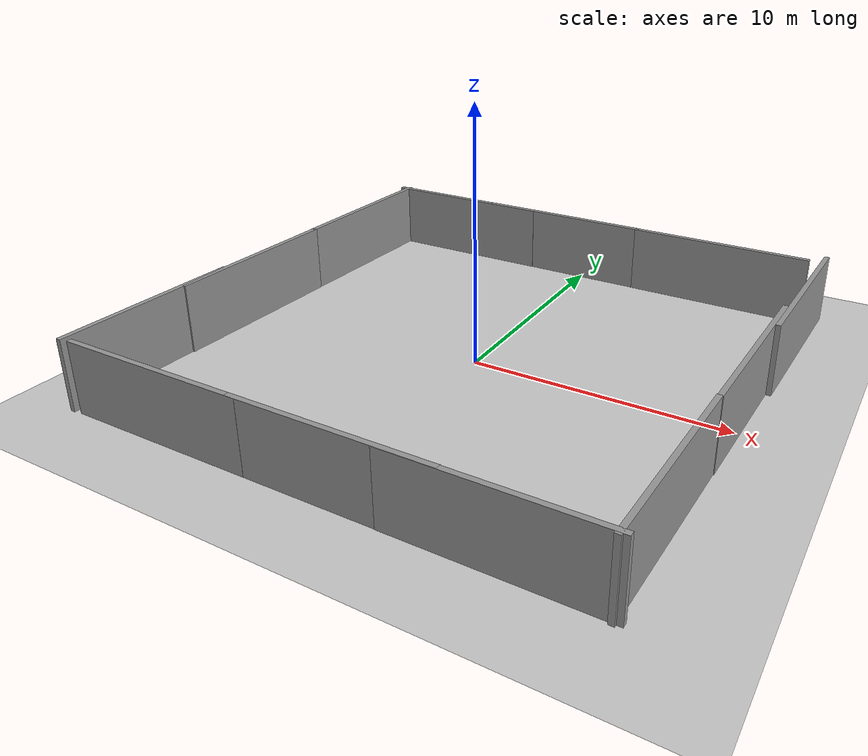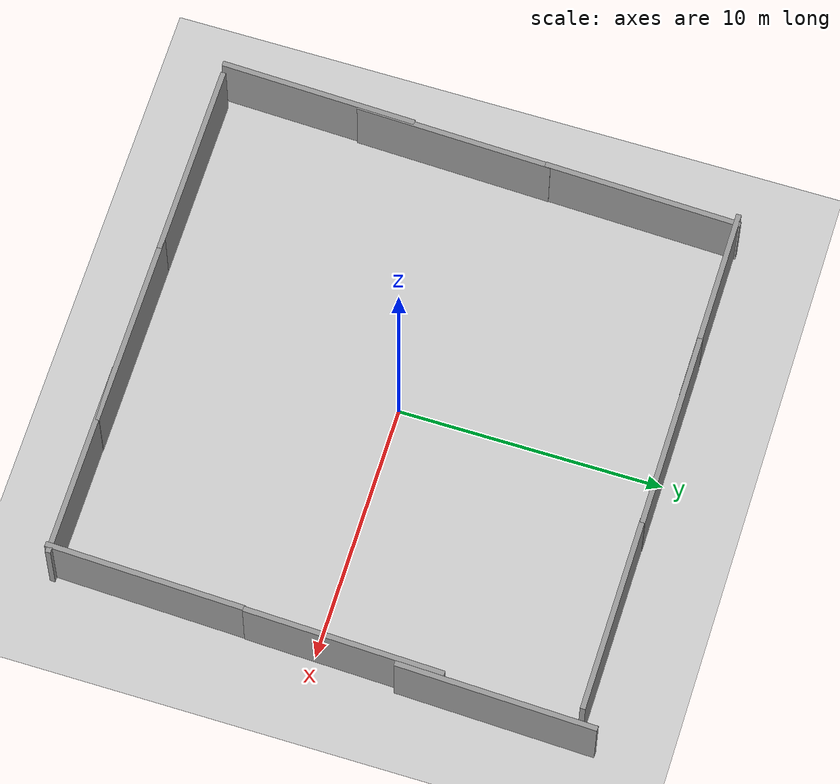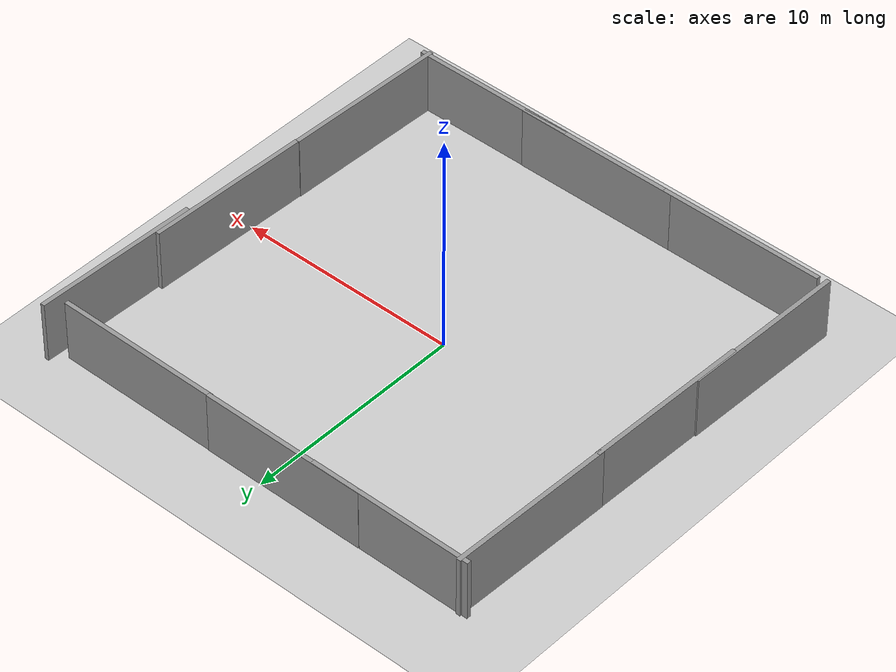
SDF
<sdf version="1.6">
 <world name="default">
  <light name="sun" type="directional">
   <pose>0 0 10 0 -0 0</pose>
   <diffuse>0.8 0.8 0.8 1</diffuse>
   <specular>0.2 0.2 0.2 1</specular>
   <attenuation>
    <range>1000</range>
    <constant>0.9</constant>
    <linear>0.01</linear>
    <quadratic>0.001</quadratic>
   </attenuation>
   <direction>-0.5 0.1 -0.9</direction>
  </light>
  <model name="ground_plane">
   <static>1</static>
   <link name="link">
    <collision name="collision">
     <geometry><plane><normal>0 0 1</normal><size>100 100</size></plane></geometry>
     <surface><friction><ode><mu>100</mu><mu2>50</mu2></ode></friction></surface>
    </collision>
    <visual name="visual">
     <cast_shadows>0</cast_shadows>
     <geometry><plane><normal>0 0 1</normal><size>100 100</size></plane></geometry>
     <material>
      <script><uri>file://media/materials/scripts/gazebo.material</uri><name>Gazebo/Grey</name></script>
     </material>
    </visual>
   </link>
  </model>
  <gravity>0 0 -9.8</gravity>
  <magnetic_field>6e-06 2.3e-05 -4.2e-05</magnetic_field>
  <atmosphere type="adiabatic"/>
  <physics name="default_physics" default="0" type="ode">
   <max_step_size>0.001</max_step_size>
   <real_time_factor>1</real_time_factor>
   <real_time_update_rate>1000</real_time_update_rate>
  </physics>
  <scene><ambient>0.4 0.4 0.4 1</ambient><background>0.7 0.7 0.7 1</background><shadows>1</shadows></scene>
  <spherical_coordinates>
   <surface_model>EARTH_WGS84</surface_model>
   <latitude_deg>0</latitude_deg>
   <longitude_deg>0</longitude_deg>
   <elevation>0</elevation>
   <heading_deg>0</heading_deg>
  </spherical_coordinates>
  <model name="grey_wall">
   <static>1</static>
   <link name="link">
    <pose>0 0 1.4 0 -0 0</pose>
    <collision name="collision"><geometry><box><size>7.5 0.2 2.8</size></box></geometry></collision>
    <visual name="visual">
     <cast_shadows>0</cast_shadows>
     <geometry><box><size>7.5 0.2 2.8</size></box></geometry>
     <material>
      <script>
       <uri>model://grey_wall/materials/scripts</uri>
       <uri>model://grey_wall/materials/textures</uri>
       <name>vrc/grey_wall</name>
      </script>
     </material>
    </visual>
   </link>
   <pose>-6.2043 -9.89021 0 0 -0 0</pose>
  </model>
  <model name="grey_wall_0">
   <static>1</static>
   <link name="link">
    <pose>0 0 1.4 0 -0 0</pose>
    <collision name="collision"><geometry><box><size>7.5 0.2 2.8</size></box></geometry></collision>
    <visual name="visual">
     <cast_shadows>0</cast_shadows>
     <geometry><box><size>7.5 0.2 2.8</size></box></geometry>
     <material>
      <script>
       <uri>model://grey_wall/materials/scripts</uri>
       <uri>model://grey_wall/materials/textures</uri>
       <name>vrc/grey_wall</name>
      </script>
     </material>
    </visual>
   </link>
   <pose>0.905339 -9.88873 0 0 -0 0</pose>
  </model>
  <model name="grey_wall_1">
   <static>1</static>
   <link name="link">
    <pose>0 0 1.4 0 -0 0</pose>
    <collision name="collision"><geometry><box><size>7.5 0.2 2.8</size></box></geometry></collision>
    <visual name="visual">
     <cast_shadows>0</cast_shadows>
     <geometry><box><size>7.5 0.2 2.8</size></box></geometry>
     <material>
      <script>
       <uri>model://grey_wall/materials/scripts</uri>
       <uri>model://grey_wall/materials/textures</uri>
       <name>vrc/grey_wall</name>
      </script>
     </material>
    </visual>
   </link>
   <pose>6.27176 -9.90426 0 0 -0 0</pose>
  </model>
  <model name="grey_wall_1_clone">
   <static>1</static>
   <link name="link">
    <pose>0 0 1.4 0 -0 0</pose>
    <collision name="collision"><geometry><box><size>7.5 0.2 2.8</size></box></geometry></collision>
    <visual name="visual">
     <cast_shadows>0</cast_shadows>
     <geometry><box><size>7.5 0.2 2.8</size></box></geometry>
     <material>
      <script>
       <uri>model://grey_wall/materials/scripts</uri>
       <uri>model://grey_wall/materials/textures</uri>
       <name>vrc/grey_wall</name>
      </script>
     </material>
    </visual>
   </link>
   <pose>6.27114 9.85733 0 0 0 -0.002792</pose>
  </model>
  <model name="grey_wall_1_clone_0">
   <static>1</static>
   <link name="link">
    <pose>0 0 1.4 0 -0 0</pose>
    <collision name="collision"><geometry><box><size>7.5 0.2 2.8</size></box></geometry></collision>
    <visual name="visual">
     <cast_shadows>0</cast_shadows>
     <geometry><box><size>7.5 0.2 2.8</size></box></geometry>
     <material>
      <script>
       <uri>model://grey_wall/materials/scripts</uri>
       <uri>model://grey_wall/materials/textures</uri>
       <name>vrc/grey_wall</name>
      </script>
     </material>
    </visual>
   </link>
   <pose>-1.09049 9.88413 0 0 -0 0</pose>
  </model>
  <model name="grey_wall_1_clone_1">
   <static>1</static>
   <link name="link">
    <pose>0 0 1.4 0 -0 0</pose>
    <collision name="collision"><geometry><box><size>7.5 0.2 2.8</size></box></geometry></collision>
    <visual name="visual">
     <cast_shadows>0</cast_shadows>
     <geometry><box><size>7.5 0.2 2.8</size></box></geometry>
     <material>
      <script>
       <uri>model://grey_wall/materials/scripts</uri>
       <uri>model://grey_wall/materials/textures</uri>
       <name>vrc/grey_wall</name>
      </script>
     </material>
    </visual>
   </link>
   <pose>-6.27772 9.87044 0 0 -0 0</pose>
  </model>
  <light name="user_point_light_0" type="point">
   <pose>0.895265 0.022298 1 0 -0 0</pose>
   <diffuse>0.5 0.5 0.5 1</diffuse>
   <specular>0.1 0.1 0.1 1</specular>
   <attenuation>
    <range>20</range>
    <constant>0.5</constant>
    <linear>0.01</linear>
    <quadratic>0.001</quadratic>
   </attenuation>
   <cast_shadows>0</cast_shadows>
   <direction>0 0 -1</direction>
  </light>
  <model name="grey_wall_1_clone_clone">
   <static>1</static>
   <link name="link">
    <pose>0 0 1.4 0 -0 0</pose>
    <collision name="collision"><geometry><box><size>7.5 0.2 2.8</size></box></geometry></collision>
    <visual name="visual">
     <cast_shadows>0</cast_shadows>
     <geometry><box><size>7.5 0.2 2.8</size></box></geometry>
     <material>
      <script>
       <uri>model://grey_wall/materials/scripts</uri>
       <uri>model://grey_wall/materials/textures</uri>
       <name>vrc/grey_wall</name>
      </script>
     </material>
    </visual>
   </link>
   <pose>-9.77527 6.29066 0 0 0 -1.60129</pose>
  </model>
  <model name="grey_wall_1_clone_clone_clone">
   <static>1</static>
   <link name="link">
    <pose>0 0 1.4 0 -0 0</pose>
    <collision name="collision"><geometry><box><size>7.5 0.2 2.8</size></box></geometry></collision>
    <visual name="visual">
     <cast_shadows>0</cast_shadows>
     <geometry><box><size>7.5 0.2 2.8</size></box></geometry>
     <material>
      <script>
       <uri>model://grey_wall/materials/scripts</uri>
       <uri>model://grey_wall/materials/textures</uri>
       <name>vrc/grey_wall</name>
      </script>
     </material>
    </visual>
   </link>
   <pose>-9.983 -0.979888 0 0 0 -1.60129</pose>
  </model>
  <model name="grey_wall_1_clone_clone_clone_0">
   <static>1</static>
   <link name="link">
    <pose>0 0 1.4 0 -0 0</pose>
    <collision name="collision"><geometry><box><size>7.5 0.2 2.8</size></box></geometry></collision>
    <visual name="visual">
     <cast_shadows>0</cast_shadows>
     <geometry><box><size>7.5 0.2 2.8</size></box></geometry>
     <material>
      <script>
       <uri>model://grey_wall/materials/scripts</uri>
       <uri>model://grey_wall/materials/textures</uri>
       <name>vrc/grey_wall</name>
      </script>
     </material>
    </visual>
   </link>
   <pose>-10.2074 -6.29045 0 0 0 -1.60129</pose>
  </model>
  <model name="grey_wall_1_clone_clone_clone_1">
   <static>1</static>
   <link name="link">
    <pose>0 0 1.4 0 -0 0</pose>
    <collision name="collision"><geometry><box><size>7.5 0.2 2.8</size></box></geometry></collision>
    <visual name="visual">
     <cast_shadows>0</cast_shadows>
     <geometry><box><size>7.5 0.2 2.8</size></box></geometry>
     <material>
      <script>
       <uri>model://grey_wall/materials/scripts</uri>
       <uri>model://grey_wall/materials/textures</uri>
       <name>vrc/grey_wall</name>
      </script>
     </material>
    </visual>
   </link>
   <pose>9.84133 -6.34147 0 0 0 -1.60129</pose>
  </model>
  <model name="grey_wall_1_clone_clone_clone_2">
   <static>1</static>
   <link name="link">
    <pose>0 0 1.4 0 -0 0</pose>
    <collision name="collision"><geometry><box><size>7.5 0.2 2.8</size></box></geometry></collision>
    <visual name="visual">
     <cast_shadows>0</cast_shadows>
     <geometry><box><size>7.5 0.2 2.8</size></box></geometry>
     <material>
      <script>
       <uri>model://grey_wall/materials/scripts</uri>
       <uri>model://grey_wall/materials/textures</uri>
       <name>vrc/grey_wall</name>
      </script>
     </material>
    </visual>
   </link>
   <pose>10.0929 1.11136 0 0 0 -1.60129</pose>
  </model>
  <model name="grey_wall_1_clone_clone_clone_3">
   <static>1</static>
   <link name="link">
    <pose>0 0 1.4 0 -0 0</pose>
    <collision name="collision"><geometry><box><size>7.5 0.2 2.8</size></box></geometry></collision>
    <visual name="visual">
     <cast_shadows>0</cast_shadows>
     <geometry><box><size>7.5 0.2 2.8</size></box></geometry>
     <material>
      <script>
       <uri>model://grey_wall/materials/scripts</uri>
       <uri>model://grey_wall/materials/textures</uri>
       <name>vrc/grey_wall</name>
      </script>
     </material>
    </visual>
   </link>
   <pose>10.4582 6.81014 0 0 0 -1.60129</pose>
  </model>
 </world>
</sdf>
